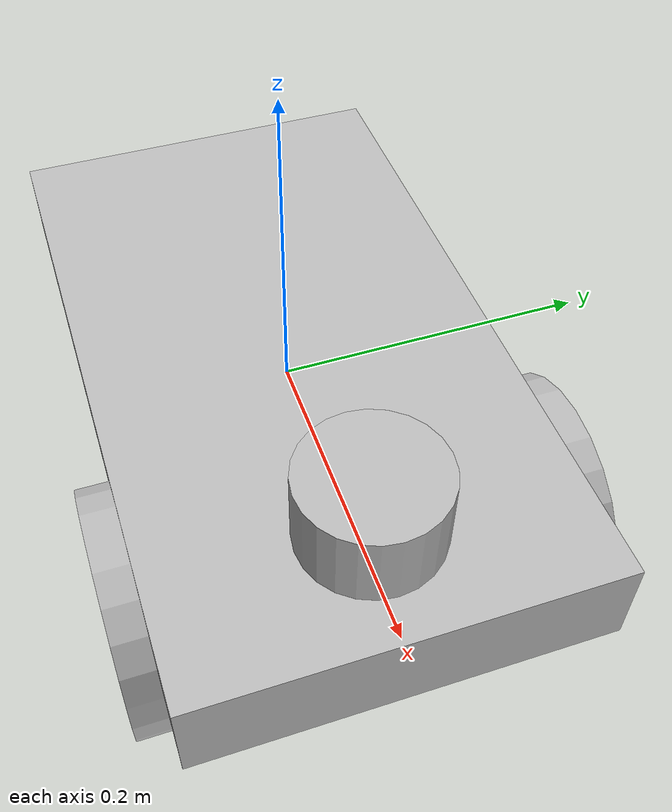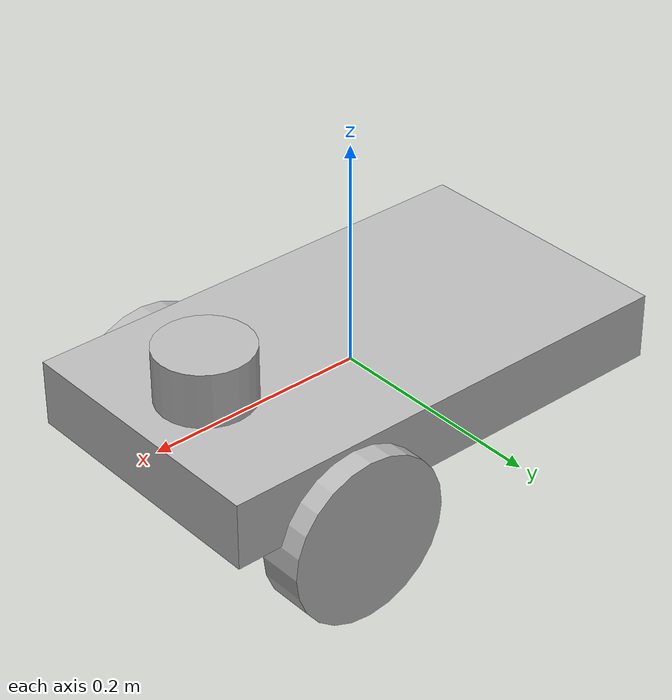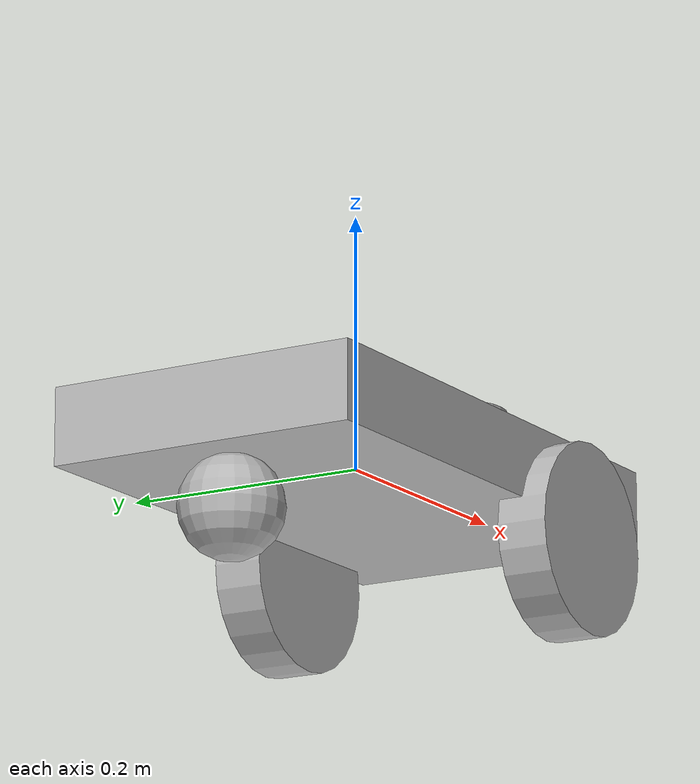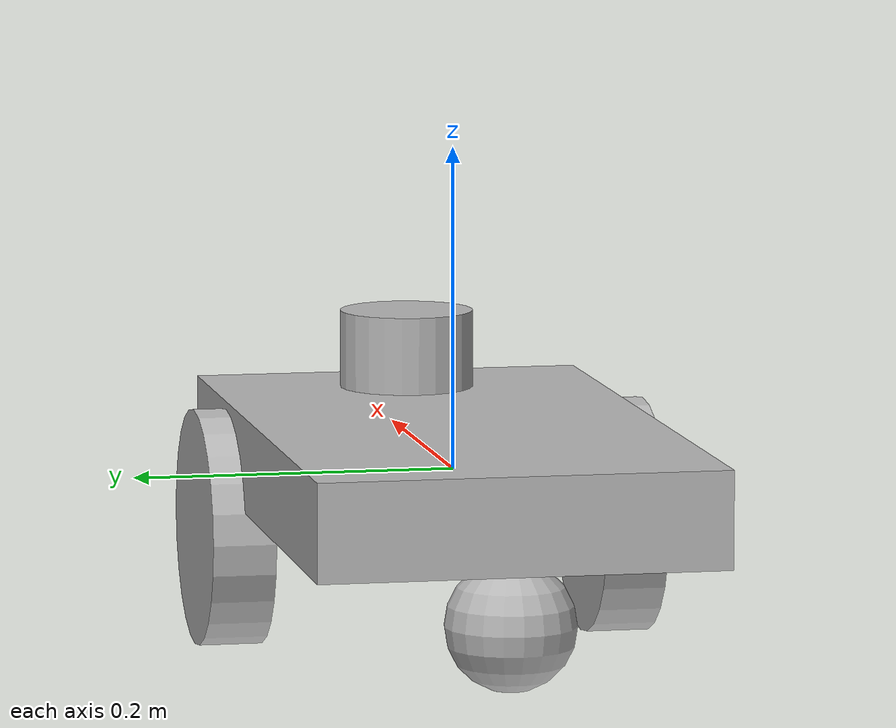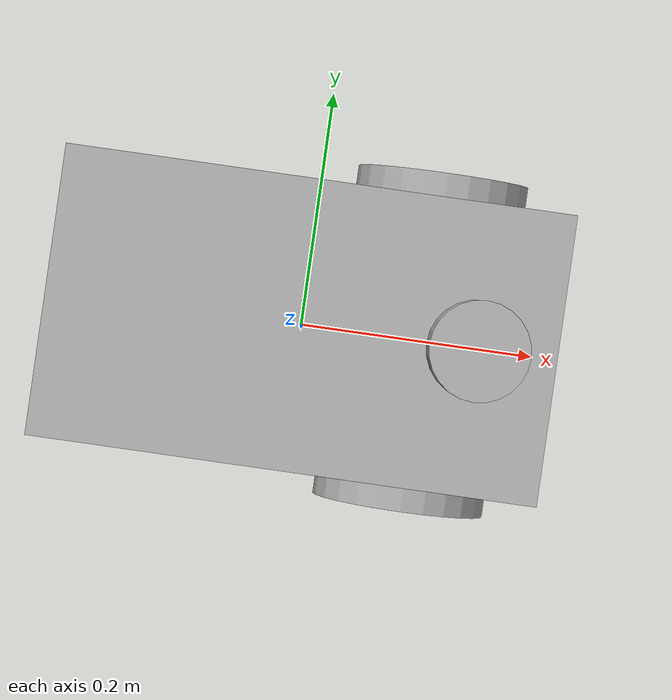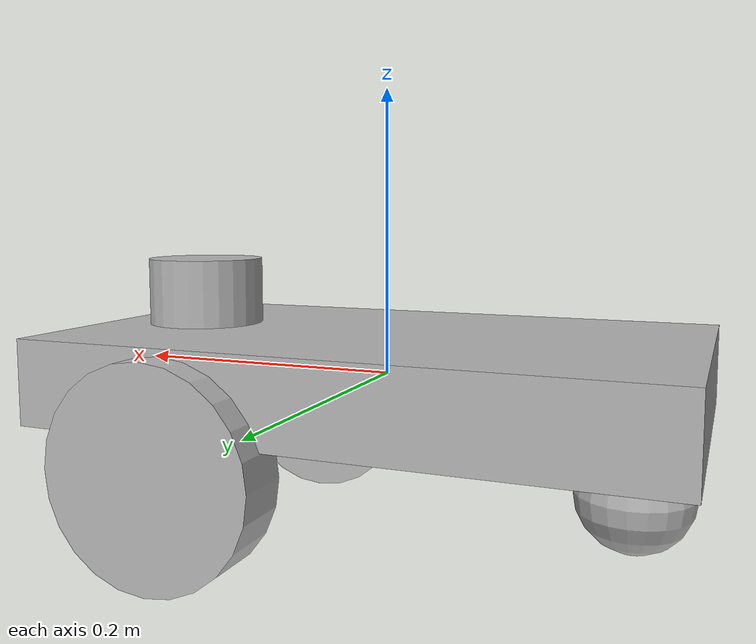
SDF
<?xml version="1.0"?>
<sdf version="1.5">
  <model name="dandy_robot_lidar">
    <static>false</static>

    <!-- ****************** ROBOT BASE FOOTPRINT ***************************  -->
    <pose>0.0 0.0 0.0 0.0 0.0 0.0</pose>
    <link name="base_footprint" />

    <!-- ********************** ROBOT BASE *********************************  -->
    <link name="base_link">
      <collision name="base_collision">
        <pose>0 0 0 0 0 0</pose>
        <mass>40.0</mass>
        <geometry>
          <box>
            <size>0.4385 0.25 0.06</size>
          </box>
        </geometry>
      </collision>

      <visual name="base_visual">
        <pose>0 0 0 0 0 0</pose>
        <geometry>
          <box>
            <size>0.4385 0.25 0.06</size>
          </box>
        </geometry>
      </visual>
    </link>

    <!-- *********************** IMU SENSOR SETUP **************************  -->
    <link name="imu_link">
      <pose>-0.07225 0.083 0.05 0 0 0</pose>
      <gravity>true</gravity>
      <sensor name="bmb_imu" type="imu">
        <always_on>true</always_on>
        <update_rate>100</update_rate>
        <visualize>true</visualize>
        <imu>
          <orientation>
            <x>
              <noise type="gaussian">
                <mean>0.0</mean>
                <stddev>2e-3</stddev>
              </noise>
            </x>
            <y>
              <noise type="gaussian">
                <mean>0.0</mean>
                <stddev>2e-3</stddev>
              </noise>
            </y>
            <z>
              <noise type="gaussian">
                <mean>0.0</mean>
                <stddev>2e-3</stddev>
              </noise>
            </z>
          </orientation>
          <angular_velocity>
            <x>
              <noise type="gaussian">
                <mean>0.0</mean>
                <stddev>2e-4</stddev>
              </noise>
            </x>
            <y>
              <noise type="gaussian">
                <mean>0.0</mean>
                <stddev>2e-4</stddev>
              </noise>
            </y>
            <z>
              <noise type="gaussian">
                <mean>0.0</mean>
                <stddev>2e-4</stddev>
              </noise>
            </z>
          </angular_velocity>
          <linear_acceleration>
            <x>
              <noise type="gaussian">
                <mean>0.0</mean>
                <stddev>1.7e-2</stddev>
              </noise>
            </x>
            <y>
              <noise type="gaussian">
                <mean>0.0</mean>
                <stddev>1.7e-2</stddev>
              </noise>
            </y>
            <z>
              <noise type="gaussian">
                <mean>0.0</mean>
                <stddev>1.7e-2</stddev>
              </noise>
            </z>
          </linear_acceleration>
        </imu>
        <plugin name="dandy_robot_imu" filename="libgazebo_ros_imu_sensor.so">
          <initial_orientation_as_reference>false</initial_orientation_as_reference>
          <frame_name>imu_link</frame_name>
          <ros>
            <namespace>/imu</namespace>
            <remapping>~/out:=data</remapping>
          </ros>
        </plugin>
      </sensor>
    </link>

    <!-- *********************** GPS SETUP *********************************  -->
    <link name="gps_link">
      <pose>0.02275 -0.067 0.05 0 0 0</pose>
      <sensor name="bmb_gps" type="gps">
        <always_on>true</always_on>
        <update_rate>10.0</update_rate>
        <gps>
          <position_sensing>
            <horizontal>
              <noise type="gaussian">
                <mean>0.0</mean>
                <stddev>1e-2</stddev>
              </noise>
            </horizontal>
            <vertical>
              <noise type="gaussian">
                <mean>0.0</mean>
                <stddev>1</stddev>
              </noise>
            </vertical>
          </position_sensing>
        </gps>
        <plugin name="dandy_robot_gps" filename="libgazebo_ros_gps_sensor.so">
          <ros>
            <remapping>~/out:=gps/fix</remapping>
          </ros>
        </plugin>
      </sensor>
    </link>

    <!-- *********************** LIDAR SETUP *********************************  -->
    <link name="lidar_link">
      <pose>0.15 0 0.05 0 0 0</pose>
      <inertial>
        <mass>1.2</mass>
        <inertia>
          <ixx>0.001087473</ixx>
          <iyy>0.001087473</iyy>
          <izz>0.001092437</izz>
          <ixy>0</ixy>
          <ixz>0</ixz>
          <iyz>0</iyz>
        </inertia>
      </inertial>
      <collision name="base_collision">
        <pose>0 0 0 0 0 0</pose>
        <geometry>
          <cylinder>
            <!-- Radius and length provided by Velodyne -->
            <radius>.04267</radius>
            <length>.05867</length>
          </cylinder>
        </geometry>
      </collision>

      <!-- The visual is mostly a copy of the collision -->
      <visual name="base_visual">
        <pose>0 0 0 0 0 0</pose>
        <geometry>
          <cylinder>
            <radius>.04267</radius>
            <length>.05867</length>
          </cylinder>
        </geometry>
      </visual>
      <sensor name="lidar" type="ray">
        <pose>0 0 0.025 0 0 0</pose>
        <always_on>true</always_on>
        <visualize>true</visualize>
        <update_rate>5</update_rate>
        <ray>
          <scan>
            <horizontal>
              <samples>1875</samples>
              <resolution>1</resolution>
              <min_angle>-0.611</min_angle>
              <max_angle>0.611</max_angle>
            </horizontal>
            <vertical>
              <samples>16</samples>
              <resolution>1</resolution>
              <min_angle>-0.261799</min_angle>
              <max_angle>0.0</max_angle>
            </vertical>
          </scan>
          <range>
            <min>0.120000</min>
            <max>3.5</max>
            <resolution>0.015000</resolution>
          </range>
          <noise>
            <type>gaussian</type>
            <mean>0.0</mean>
            <stddev>0.01</stddev>
          </noise>
        </ray>
        <plugin name="scan" filename="libgazebo_ros_velodyne_laser.so">
          <ros>
            <min_range>0.120000</min_range>
            <max_range>3.5</max_range>
            <remapping>~/out:=scan</remapping>
          </ros>
          <output_type>sensor_msgs/PointCloud2</output_type>
          <frame_name>base_link</frame_name>
        </plugin>
      </sensor>
    </link>

    <!-- *********************** DRIVE WHEELS ******************************  -->
    <link name="drivewhl_l_link">
      <pose>0.10575 0.1255 -0.05 0 1.570796 1.570796</pose>
      <mass>10.0</mass>
      <collision name="drivewhl_l_collision">
        <geometry>
          <cylinder>
            <radius>0.075</radius>
            <length>0.04</length>
          </cylinder>
        </geometry>
      </collision>

      <visual name="drivewhl_l_visual">
        <geometry>
          <cylinder>
            <radius>0.075</radius>
            <length>0.04</length>
          </cylinder>
        </geometry>
      </visual>
    </link>

    <link name="drivewhl_r_link">
      <pose>0.10575 -0.1255 -0.05 0 1.570796 1.570796</pose>
      <mass>10.0</mass>
      <collision name="drivewhl_r_collision">
        <geometry>
          <cylinder>
            <radius>0.075</radius>
            <length>0.04</length>
          </cylinder>
        </geometry>
      </collision>

      <visual name="drivewhl_r_visual">
        <geometry>
          <cylinder>
            <radius>0.075</radius>
            <length>0.04</length>
          </cylinder>
        </geometry>
      </visual>
    </link>

    <!-- *********************** CASTER WHEEL ******************************  -->
    <link name='back_caster'>
      <pose>-0.17425 0.0 -0.067 0 0 0</pose>
      <inertial>
        <inertia>
          <ixx>0.001</ixx>
          <ixy>0.000</ixy>
          <ixz>0.000</ixz>
          <iyy>0.001</iyy>
          <iyz>0.000</iyz>
          <izz>0.001</izz>
        </inertia>
        <mass>10.05</mass>
      </inertial>
      <collision name='collision'>
        <geometry>
          <sphere>
            <radius>0.04</radius>
          </sphere>
        </geometry>
        <surface>
          <friction>
            <ode>
              <mu>0.01</mu>
              <mu2>0.01</mu2>
              <slip1>1.0</slip1>
              <slip2>1.0</slip2>
            </ode>
          </friction>
        </surface>
      </collision>
      <visual name="back_caster_visual">
        <geometry>
          <sphere>
            <radius>0.04</radius>
          </sphere>
        </geometry>
      </visual>
    </link>

    <!-- ************************ JOINTS ***********************************  -->
    <!-- Pose of the joint is the same as the child link frame -->
    <!-- Axis is the axis of rotation relative to the child link frame -->

    <joint name="base_joint" type="fixed">
      <parent>base_footprint</parent>
      <child>base_link</child>
      <pose>0 0 0 0 0 0</pose>
    </joint>

    <joint name="drivewhl_l_joint" type="revolute">
      <parent>base_link</parent>
      <child>drivewhl_l_link</child>
      <pose>0 0 0 0 0 0</pose>
      <axis>
        <xyz>0 0 1</xyz>
      </axis>
    </joint>

    <joint name="drivewhl_r_joint" type="revolute">
      <parent>base_link</parent>
      <child>drivewhl_r_link</child>
      <pose>0 0 0 0 0 0</pose>
      <axis>
        <xyz>0 0 1</xyz>
      </axis>
    </joint>

    <joint name='caster_joint' type='fixed'>
      <parent>base_link</parent>
      <child>back_caster</child>
      <pose>0 0 0 0 0 0</pose>
    </joint>

    <joint name="imu_joint" type="fixed">
      <parent>base_link</parent>
      <child>imu_link</child>
      <pose>0 0 0 0 0 0</pose>
    </joint>

    <joint name="gps_joint" type="fixed">
      <parent>base_link</parent>
      <child>gps_link</child>
      <pose>0 0 0 0 0 0</pose>
    </joint>

    <joint name="lidar_joint" type="fixed">
      <parent>base_link</parent>
      <child>lidar_link</child>
      <pose>0 0 0 0 0 0</pose>
    </joint>

    <!-- *********************** WHEEL ODOMETRY ***************************    -->
    <plugin name="dandy_robot_bot_diff_drive" filename="libgazebo_ros_diff_drive.so">

      <update_rate>30</update_rate>

      <!-- wheels -->
      <left_joint>drivewhl_l_joint</left_joint>
      <right_joint>drivewhl_r_joint</right_joint>

      <!-- kinematics -->
      <wheel_separation>0.2115</wheel_separation>
      <wheel_diameter>0.15</wheel_diameter>

      <!-- limits -->
      <max_wheel_torque>20</max_wheel_torque>
      <max_wheel_acceleration>0.25</max_wheel_acceleration>

      <!-- Receive velocity commands on this ROS topic -->
      <command_topic>cmd_vel</command_topic>

      <!-- output -->
      <!-- When false, publish no wheel odometry data to a ROS topic -->
      <publish_odom>true</publish_odom>

      <!-- When true, publish coordinate transform from odom to base_footprint -->
      <!-- I usually use the robot_localization package to publish this transform -->
      <publish_odom_tf>false</publish_odom_tf>

      <!-- When true, publish coordinate transform from base_link to the wheels -->
      <!-- The robot_state_publisher package is often used to publish this transform -->
      <publish_wheel_tf>false</publish_wheel_tf>

      <odometry_topic>odom</odometry_topic>
      <odometry_frame>odom</odometry_frame>
      <robot_base_frame>base_footprint</robot_base_frame>

      <!-- Odometry source, 0 for ENCODER, 1 for WORLD, defaults to WORLD -->
      <odometry_source>1</odometry_source>

      <!-- Change the ROS topic we will publish the odometry data to -->
      <ros>
        <remapping>odom:=odom</remapping>
        <remapping>cmd_vel:=twist</remapping>
      </ros>

    </plugin>

    <!-- *********************** JOINT STATE PUBLISHER *********************   -->

    <plugin name="dandy_robot_bot_joint_state" filename="libgazebo_ros_joint_state_publisher.so">
      <ros>
        <remapping>~/out:=joint_states</remapping>
      </ros>
      <update_rate>30</update_rate>
      <joint_name>drivewhl_l_joint</joint_name>
      <joint_name>drivewhl_r_joint</joint_name>
    </plugin>

  </model>
</sdf>
